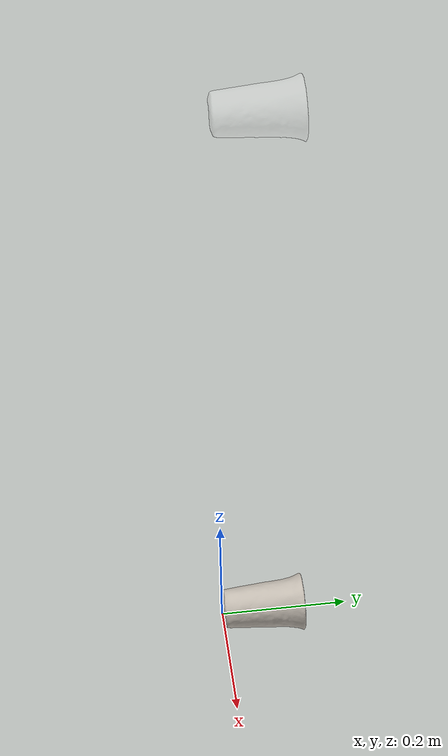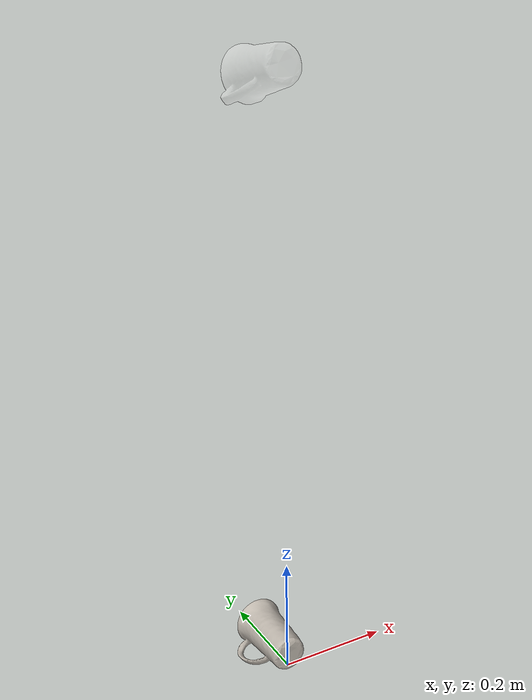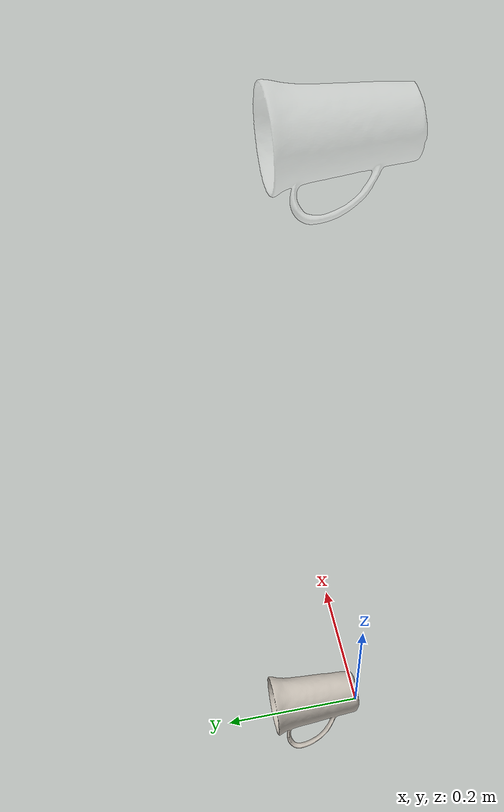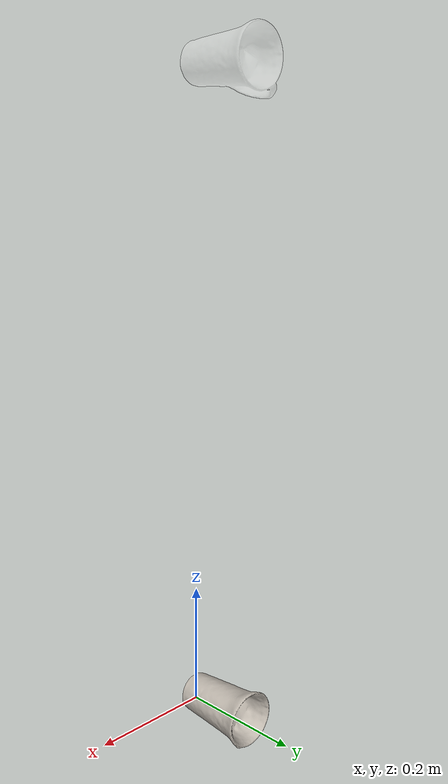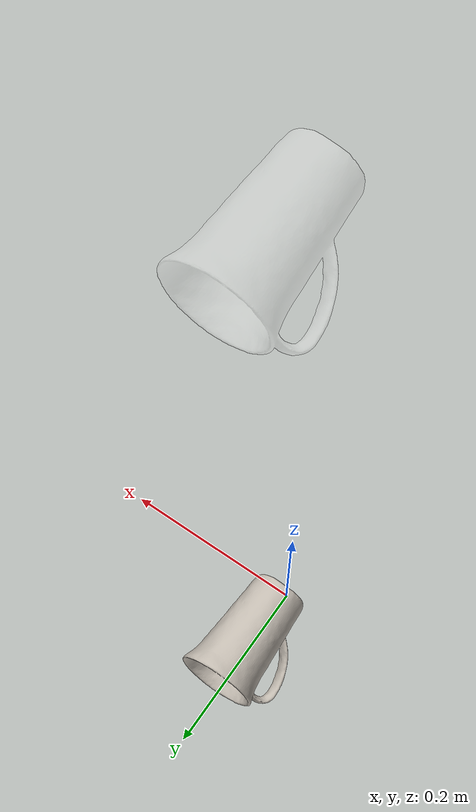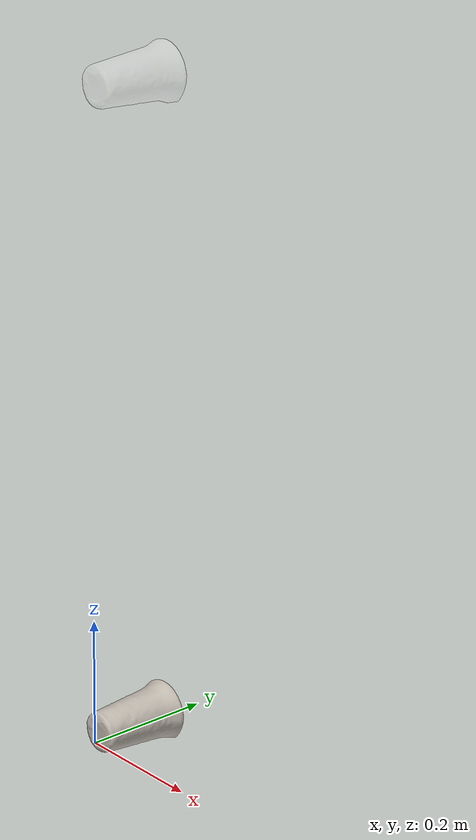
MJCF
<mujoco model="mug">
  <compiler angle="radian" meshdir="assets" texturedir="assets" inertiafromgeom="auto"/>

  <default>
    <default class="mug_rack_visual">
      <geom group="2" type="mesh" contype="0" conaffinity="0" mass="0"/>
    </default>
    <default class="mug_rack_collision">
      <geom group="3" type="mesh" condim="6" priority="1" solref="0.01 1" solimp="0.99 0.999 0.001 0.5 1"/>
    </default>
  </default>

  <asset>
    <texture type="2d" name="mug_texture" file="material_0.png"/>
    <material name="mug_material" texture="mug_texture"/>
    <mesh name="mug" file="muggood.obj"/>
  </asset>

  <worldbody>
    <body name="body">
      <joint name="joint" type="free" damping="0.005"/>
      <geom name="visual_geom" material="mug_material" mesh="mug" class="mug_rack_visual"/>
      <geom name="collision_geom" mesh="mug" class="mug_rack_collision"/>
    </body>

    <body name="target_body" mocap="true" pos="0 0 1" quat="1 0 0 0">
      <geom name="target_visual_geom"
            type="mesh"
            mesh="mug"
            material="mug_material"
            contype="0"
            conaffinity="0"
            group="2"
            rgba="1 1 1 0.25"/>
    </body>
  </worldbody>
</mujoco>
